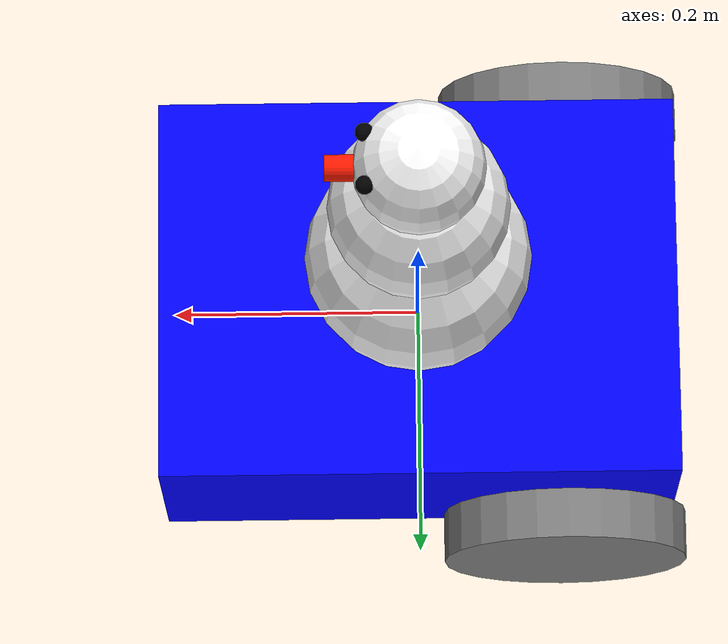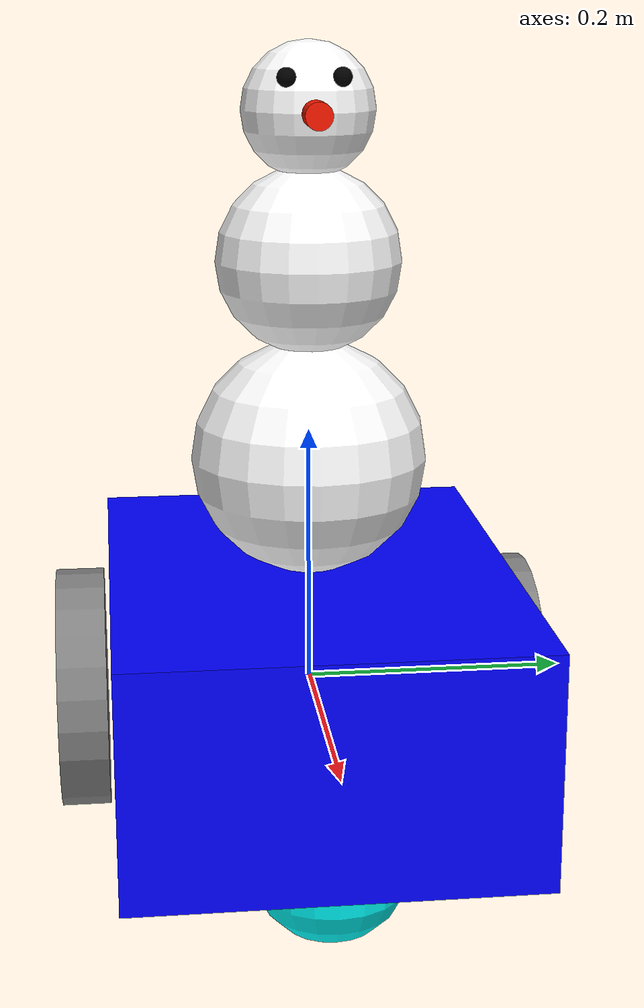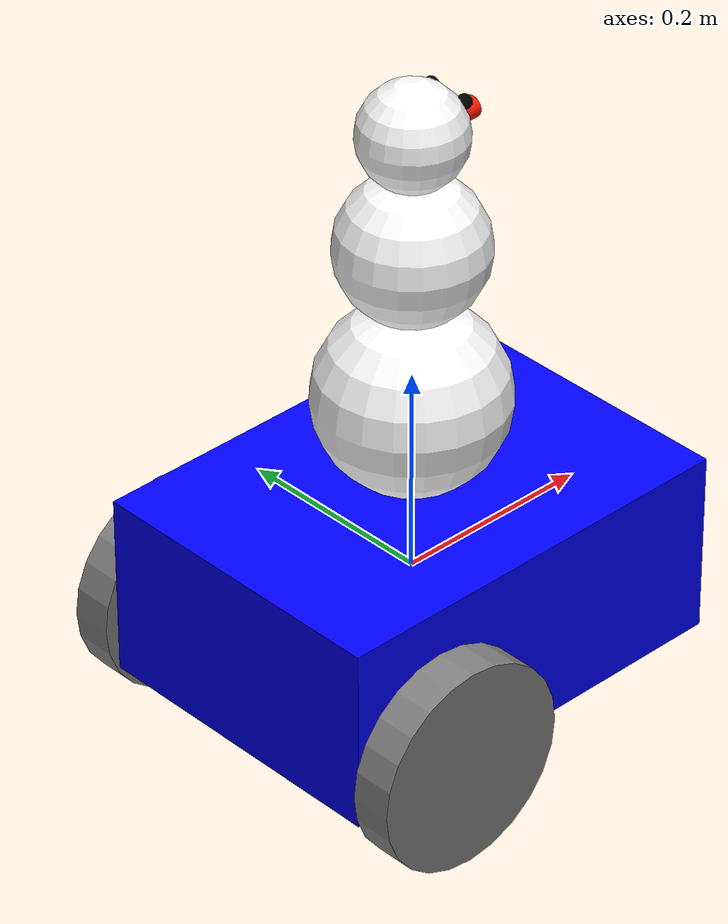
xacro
<?xml version="1.0"?>
<robot name='robot' xmlns:xacro="http://ros.org/eiki/xacro">

	<xacro:include filename="$(find robot_description)/urdf/gazebo.urdf.xacro" />
	<!-- Robot properites -->
	<xacro:property name="base_width" value="0.31"/>
	<xacro:property name="base_length" value="0.42"/>
	<xacro:property name="base_height" value="0.18"/>

	<xacro:property name="wheel_radius" value="0.10"/>
	<xacro:property name="wheel_width" value="0.04"/>
	<xacro:property name="wheel_ygap" value="0.025"/>
	<xacro:property name="wheel_zoff" value="0.05"/>
	<xacro:property name="wheel_xoff" value="0.12"/>

	<xacro:property name="caster_xoff" value="0.14"/>

	<!-- Inertial properties -->
	<xacro:macro name="box_inertia" params="m w h d">
	    <inertial>
		      <origin xyz="0 0 0" rpy="${pi/2} 0 ${pi/2}"/>
		      <mass value="${m}"/>
		      <inertia ixx="${(m/12) * (h*h + d*d)}" ixy="0.0" ixz="0.0" iyy="${(m/12) * (w*w + d*d)}" iyz="0.0" izz="${(m/12) * (w*w + h*h)}"/>
	    </inertial>
 	</xacro:macro>

	<xacro:macro name="cylinder_inertia" params="m r h">
		<inertial>
			<origin xyz="0 0 0" rpy="${pi/2} 0 0" />
			<mass value="${m}"/>
			<inertia ixx="${(m/12) * (3*r*r + h*h)}" ixy = "0" ixz = "0" iyy="${(m/12) * (3*r*r + h*h)}" iyz = "0" izz="${(m/2) * (r*r)}"/>
		</inertial>
	</xacro:macro>

	<xacro:macro name="sphere_inertia" params="m r">
		<inertial>
			<mass value="${m}"/>
			<inertia ixx="${(2/5) * m * (r*r)}" ixy="0.0" ixz="0.0" iyy="${(2/5) * m * (r*r)}" iyz="0.0" izz="${(2/5) * m * (r*r)}"/>
		</inertial>
	</xacro:macro>

	<!-- Robot Base -->
	<link name="base_link">
		<visual>
			<geometry>
				<box size="${base_length} ${base_width} ${base_height}"/>
			</geometry>
			<material name="blue">
				<color rgba="0 0 1.0 1.0"/>
			</material>
		</visual>

		<collision>
			<geometry>
				<box size="${base_length} ${base_width} ${base_height}"/>
			</geometry>
		</collision>

		<xacro:box_inertia m="12" w="${base_width}" d="${base_length}" h="${base_height}"/>
	</link>

	<xacro:macro name="snowman_sphere" params="prefix parent r m h">
		<link name="${prefix}_link">
			<visual>
				<geometry>
					<sphere radius="${r}"/>
				</geometry>
				<material name="White">
					<color rgba="1.0 1.0 1.0 1.0"/>
				</material>
			</visual>
			<collision>
				<geometry>
					<sphere radius="${r}"/>
				</geometry>
			</collision>
			<xacro:sphere_inertia m="${m}" r="${r}"/>
		</link>

		<joint name="${prefix}_joint" type="fixed">
			<parent link="${parent}"/>
			<child link="${prefix}_link"/>
			<origin xyz="0 0 ${h}" rpy="0 0 0"/>
		</joint>
	</xacro:macro>

	<xacro:snowman_sphere prefix="lower_sphere" parent="base_link" r="0.09" m="2" h="${base_height}"/>
	<xacro:snowman_sphere prefix="middle_sphere" parent="lower_sphere_link" r="0.07" m="1" h="${0.09+0.06}"/>
	<xacro:snowman_sphere prefix="top_sphere" parent="middle_sphere_link" r="0.05" m="0.5" h="${0.07+0.04}"/>

	<link name="nose_link">
		<visual>
			<geometry>
				<cylinder radius="0.01" length="0.05"/>
			</geometry>
			<material name="Orange">
				<color rgba="1.0 0.1 0.0 1.0"/>
			</material>
		</visual>
		<collision>
			<geometry>
				<cylinder radius="0.01" length="0.2"/>
			</geometry>
		</collision>
		<xacro:cylinder_inertia m="0.1" r="0.01" h="0.05"/>
	</link>

	<joint name="nose_joint" type="fixed">
		<parent link="top_sphere_link"/>
		<child link="nose_link"/>
		<origin xyz="0.045 0 0" rpy="0 ${pi/2} 0"/>
	</joint>

	<xacro:macro name="snowman_eye" params="prefix parent s">
		<link name="${prefix}_link">
			<visual>
				<geometry>
					<sphere radius="0.007"/>
				</geometry>
				<material name="Black">
					<color rgba="0.0 0.0 0.0 1.0"/>
				</material>
			</visual>
			<collision>
				<geometry>
					<sphere radius="0.007"/>
				</geometry>
			</collision>
			<xacro:sphere_inertia m="0.01" r="0.007"/>
		</link>

		<joint name="${prefix}_joint" type="fixed">
			<parent link="${parent}"/>
			<child link="${prefix}_link"/>
			<origin xyz="0.04 ${s} 0.025" rpy="0 0 0"/>
		</joint>
	</xacro:macro>

	<xacro:snowman_eye prefix="left_eye" parent="top_sphere_link" s="0.02"/>
	<xacro:snowman_eye prefix="right_eye" parent="top_sphere_link" s="-0.02"/>

	<link name="base_footprint"/>

	<joint name="base_joint" type="fixed">
		<parent link="base_link"/>
		<child link="base_footprint"/>
		<origin xyz="0.0 0.0 ${-(wheel_radius+wheel_zoff)}" rpy="0 0 0"/>
	</joint>

	<!-- Wheel macro -->
	<xacro:macro name="wheel" params="prefix x_reflect y_reflect">
		<link name="${prefix}_link">
			<visual>
				<origin xyz="0 0 0" rpy="${pi/2} 0 0"/>
				<geometry>
					<cylinder radius="${wheel_radius}" length="${wheel_width}"/>
				</geometry>
				<material name="Gray">
					<color rgba="0.5 0.5 0.5 1.0"/>
				</material>
			</visual>
			<collision>
				<origin xyz="0 0 0" rpy="${pi/2} 0 0"/>
				<geometry>
					<cylinder radius="${wheel_radius}" length="${wheel_width}"/>
				</geometry>
    		</collision>

    		<xacro:cylinder_inertia m="1" r="${wheel_radius}" h="${wheel_width}"/>
		</link>

		<joint name="${prefix}_joint" type="continuous">
			<parent link="base_link"/>
			<child link="${prefix}_link"/>
			<origin xyz="${x_reflect*wheel_xoff} ${y_reflect*(base_width/2+wheel_ygap)} ${-wheel_zoff}" rpy="0 0 0"/>
			<axis xyz="0 1 0"/>
		</joint>
	</xacro:macro>

	<xacro:wheel prefix="drivewhl_l" x_reflect="-1" y_reflect="1"/>
	<xacro:wheel prefix="drivewhl_r" x_reflect="-1" y_reflect="-1"/>

	<!-- Front smaller wheel -->
	<link name="front_caster">
		<visual>
			<geometry>
				<sphere radius="${(wheel_radius+wheel_zoff-(base_height/2))}"/>
			</geometry>
			<material name="Cyan">
				<color rgba="0 1.0 1.0 1.0"/>
			</material>
		</visual>
		<collision>
      		<origin xyz="0 0 0" rpy="0 0 0"/>
      		<geometry>
        		<sphere radius="${(wheel_radius+wheel_zoff-(base_height/2))}"/>
        	</geometry>
    	</collision>

    	<xacro:sphere_inertia m="1" r="${(wheel_radius+wheel_zoff-(base_height/2))}"/>
	</link>

	<joint name="caster_joint" type="fixed">
		<parent link="base_link"/>
		<child link="front_caster"/>
		<origin xyz="${caster_xoff} 0.0 ${-(base_height/2)}" rpy="0 0 0"/>
	</joint>

	<gazebo reference="front_caster">
		<material>Gazebo/White</material>
		<mu1 value="0.001"/>
		<mu2 value="0.001"/>
	</gazebo>

</robot>
